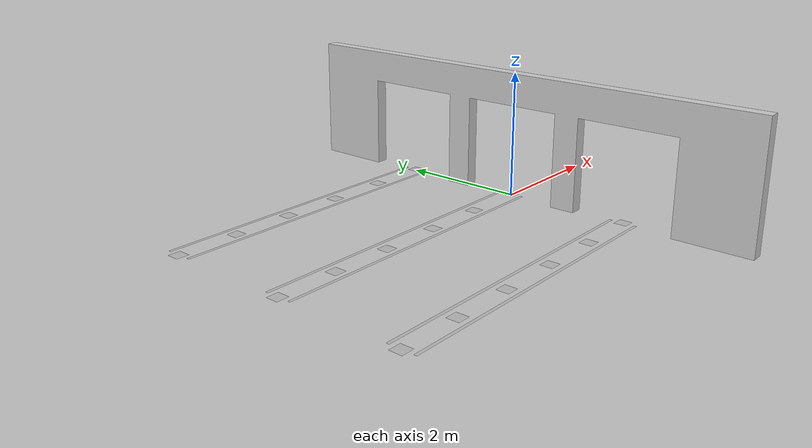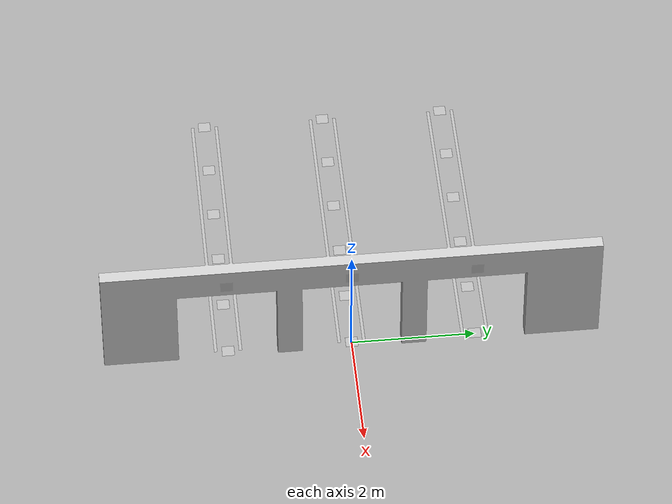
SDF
<?xml version="1.0" ?>
<sdf version="1.7">
  <model name="Wall_with_markers">
    <static>true</static>
    <pose>0 0 0 0 0 0</pose>
    <link name="link">
    <visual name="visual">
      <geometry>
        <mesh>
          <uri>model://wall_with_markers/meshes/model.dae</uri>
        </mesh>
      </geometry>
    </visual>
  </link>
</model>
</sdf>
